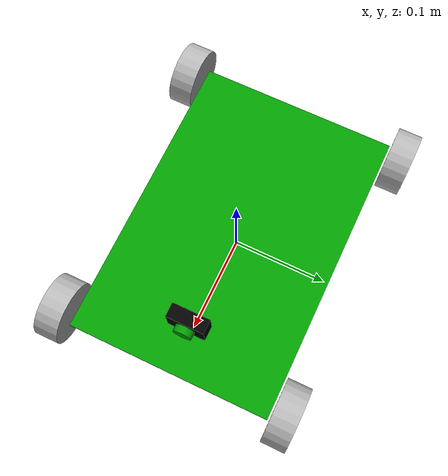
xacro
<?xml version="1.0"?>
<robot name="my_robot" xmlns:xacro="http://www.ros.org/wiki/xacro">

    <xacro:include filename="$(find antr_description)/urdf/common_properties.xacro" />
    <xacro:include filename="$(find antr_description)/urdf/mobile_base_gazebo.xacro" />
    <xacro:include filename="$(find antr_description)/urdf/mobile_base.xacro" />

</robot>

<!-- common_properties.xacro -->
<robot xmlns:xacro="http://www.ros.org/wiki/xacro">

    <material name="green">
        <color rgba="0 0.6 0 1" />
    </material>

  <material name="silver">
    <color rgba="0.8 0.8 0.8 1.0"/>
  </material>
    <material name="gray">
        <color rgba="0.7 0.7 0.7 1" />
    </material>

    <material name = "black">
        <color rgba="0 0 0 1"/>
    </material>

    <xacro:macro name="box_inertia" params="m x y z o_xyz o_rpy">
        <inertial>
            <mass value="${m}" />
            <origin xyz="${o_xyz}" rpy="${o_rpy}" />
            <inertia ixx="${(m/12) * (z*z + y*y)}" ixy="0" ixz="0"
                    iyy="${(m/12) * (x*x + z*z)}" iyz="0"
                    izz="${(m/12) * (x*x + y*y)}" />
        </inertial>
    </xacro:macro>

    <xacro:macro name="cylinder_inertia" params="m r l o_xyz o_rpy">
        <inertial>
            <origin xyz="${o_xyz}" rpy="${o_rpy}" />
  <mass value="0.5"/>
            <inertia ixx="${(m/12) * (3*r*r + l*l)}" ixy="0" ixz="0"
                    iyy="${(m/12) * (3*r*r + l*l)}" iyz="0"
                    izz="${(m/2) * (r*r)}" />        </inertial>
    </xacro:macro>

    <xacro:macro name="sphere_inertia" params="m r o_xyz o_rpy">
        <inertial>
            <mass value="${m}" />
            <origin xyz="${o_xyz}" rpy="${o_rpy}" />
            <inertia ixx="${(2/5) * m * r * r}" ixy="0" ixz="0"
                    iyy="${(2/5) * m * r * r}" iyz="0"
                    izz="${(2/5) * m * r * r}" />
        </inertial>
    </xacro:macro>

    <xacro:macro name="camera" params="width height hfov color">

    <visual>
        <geometry>
            <box size="0.015 0.040 0.030" />
        </geometry>
        <material name="${color}" />
        <origin xyz="0 0 0" rpy="0 0 0" />
    </visual>
    <visual>
        <geometry>
            <cylinder radius="0.010" length="0.015"/>
        </geometry>
        <material name="green" />
        <origin xyz="0.0075 0 0" rpy="0 ${pi / 2.0} 0" />
    </visual>
    <mass value = "0.1" />
        <inertia ixx="0.000166667" iyy = "0.000166667" izz="0.000166667" />
    </xacro:macro>

   <xacro:macro name="wheel_link" params="prefix">
        <link name="${prefix}_wheel_link">
            <visual>
                <geometry>
                    <cylinder radius="${wheel_radius}" length="${wheel_length}" />
                </geometry>
                <origin xyz="0 0 0" rpy="${pi / 2.0} 0 0" />
                <material name="gray" />
            </visual>
            <collision>
                <geometry>
                    <sphere radius="${wheel_radius}"/>
                </geometry>
                <origin xyz="0 0 0" rpy="${pi / 2.0} 0 0" />
            <surface>
              <friction>
                <ode>
                  <mu1>0.5</mu1> <!-- Lateral friction -->
                  <mu2>0.5</mu2> <!-- Secondary friction -->
                     <slip1>0.035</slip1>
   <slip2>0</slip2>
                </ode>
              </friction>
            </surface>
            </collision>
            <xacro:sphere_inertia m="0.01" r="${wheel_radius}"
                                    o_xyz="0 0 0" o_rpy="${pi / 2.0} 0 0" />
        </link>

    </xacro:macro>

    <xacro:macro name = "wheel_joint" params = "child_prefix xyz xyz_axis rpy">
        <joint name="base_${child_prefix}_wheel_joint" type="continuous">
            <parent link="base_link" />
            <child link="${child_prefix}_wheel_link" />
            <origin xyz="${xyz}" rpy="${rpy}" />
            <axis xyz="${xyz_axis}" />

        </joint>

    </xacro:macro>

<xacro:macro name="robo_link" params="name radius length material mass">

  <link name="${name}">
      <visual>
        <geometry>
          <cylinder length="${length}" radius="${radius}"/>
        </geometry>
          <origin xyz="0.0 0.0 ${length/2}" rpy="0.0 0.0 0.0"/>
        <material name="${material}"/>
      </visual>
      <collision>
          <geometry>
              <cylinder length="${length}" radius="${radius}"/>
          </geometry>
          <origin xyz="0.0 0.0 ${length/2}" rpy="0.0 0.0 0.0"/>
      </collision>
      <inertial>
          <mass value="${mass}" />
          <origin xyz="0 0 0" rpy="0 0 0" />
          <inertia ixx="${(mass/12) * (3*radius*radius + length*length)}" ixy="0" ixz="0"
                  iyy="${(mass/12) * (3*radius*radius + length*length)}" iyz="0"
                  izz="${(mass/2) * (radius*radius)}" />
      </inertial>
    </link>
</xacro:macro>

<xacro:macro name = "box_link" params = "name sx sy sz material mass">

  <link name="${name}">
    <visual>
      <geometry>
        <mesh filename="file://$(find antr_description)/stl/excavator.stl" scale="0.001 0.001 0.001"/>
      </geometry>
      <origin xyz="0.0 0.0 0.0" rpy="0.0 0.0 0.0"/>
      <material name="${material}"/>
    </visual>
    <collision>
      <geometry>
        <box size="${sx} ${sy} ${sz}"/>
      </geometry>
      <origin xyz="0.0 0.0 0.0" rpy="0.0 0.0 0.0"/>
    </collision>

  <inertial>
  <mass value="${mass}"/>
  <origin xyz="0 0 0" rpy="0 0 0" />
  <inertia ixx="${mass*(sy*sy + sz* sz)/12}" ixy="0.0" ixz="0.0" iyy="${mass*(sx*sx + sz* sz)/12}" iyz="0.0" izz="${mass*(sy*sy + sx* sx)/12}"/>
  </inertial>

  </link>

</xacro:macro>

<xacro:macro name="ros2_control_joint" params = "name mi ma">
  <joint name="${name}">

        <command_interface name = "position">
            <param name="min" value="${mi}"/>
            <param name="max" value="${ma}"/>
        </command_interface>

        <state_interface name = "velocity" />
        <state_interface name = "position"/>
    </joint>
</xacro:macro>

</robot>

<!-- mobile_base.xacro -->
<robot xmlns:xacro="http://www.ros.org/wiki/xacro">

    <xacro:property name="base_length" value="0.312" />
    <xacro:property name="base_width" value="0.2115" />
    <xacro:property name="base_height" value="0.002" />
    <xacro:property name="wheel_radius" value="0.0325" />
    <xacro:property name="wheel_length" value="0.025" />

    <link name="base_footprint" />

    <link name="base_link">
        <visual>
            <geometry>
                <box size="${base_length} ${base_width} ${base_height}" />
            </geometry>
            <origin xyz="0 0 ${base_height / 2.0}" rpy="0 0 0" />
            <material name="green" />
        </visual>
        <collision>
            <geometry>
                <box size="${base_length} ${base_width} ${base_height}" />
            </geometry>
            <origin xyz="0 0 ${base_height / 2.0}" rpy="0 0 0" />
        </collision>
        <xacro:box_inertia m="2.5" x="${base_length}" y="${base_width}" z="${base_height}"
                           o_xyz="0 0 ${base_height / 2.0}" o_rpy="0 0 0" />
    </link>

    <xacro:wheel_link prefix="right_back" />
    <xacro:wheel_link prefix="left_back" />
    <xacro:wheel_link prefix="right_front" />
    <xacro:wheel_link prefix="left_front" />

    <link name="camera_link_2">
        <xacro:camera width="640" height="480" hfov="1.3962634" color="black" />
    </link>

    <joint name="base_joint" type="fixed">
        <parent link="base_footprint" />
        <child link="base_link" />
        <origin xyz="0 0 ${wheel_radius}" rpy="0 0 0" />
    </joint>

    <xacro:wheel_joint child_prefix = "left_back" xyz = "${(-base_length / 2.0)+0.012} ${-(base_width + wheel_length) / 2.0 - 0.002} 0" xyz_axis = "0 1 0" rpy = "0 0 0"/>
    <xacro:wheel_joint child_prefix = "right_back" xyz = "${(-base_length / 2.0)+0.012} ${(base_width + wheel_length) / 2.0 + 0.002} 0" xyz_axis = "0 1 0" rpy = "0 0 0"/>
    <xacro:wheel_joint child_prefix = "left_front" xyz = "${(base_length / 2.0)-0.012} ${-(base_width + wheel_length) / 2.0 - 0.002} 0" xyz_axis = "0 1 0" rpy = "0 0 0"/>
    <xacro:wheel_joint child_prefix = "right_front" xyz = "${(base_length / 2.0)-0.012} ${(base_width + wheel_length) / 2.0 + 0.002} 0" xyz_axis = "0 1 0" rpy = "0 0 0"/>

    <joint name="base_camera_joint" type="fixed">
        <parent link="base_link"/>
        <child link="camera_link_2"/>
        <origin xyz="${base_length/2 - 0.050} 0.0 ${base_height+0.015}" rpy="0.0 0.0 0.0"/>
    </joint>

</robot>
